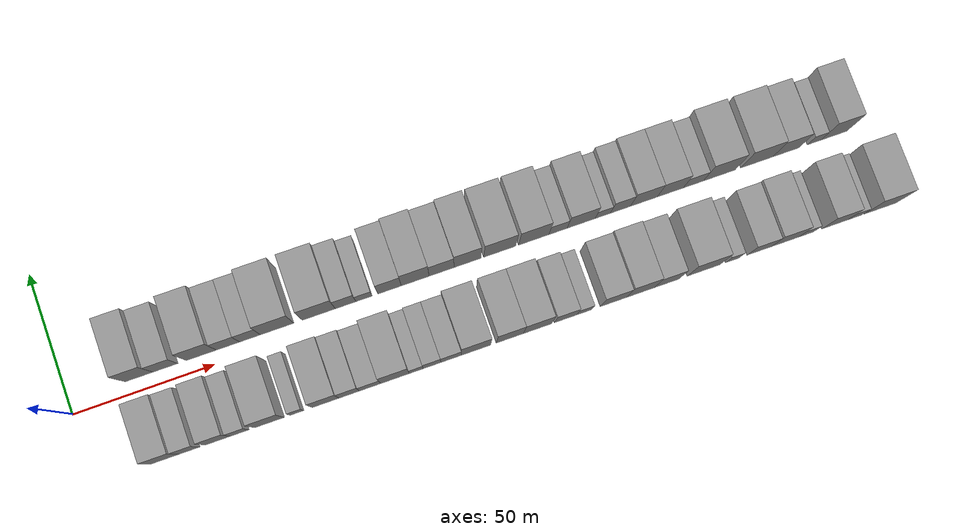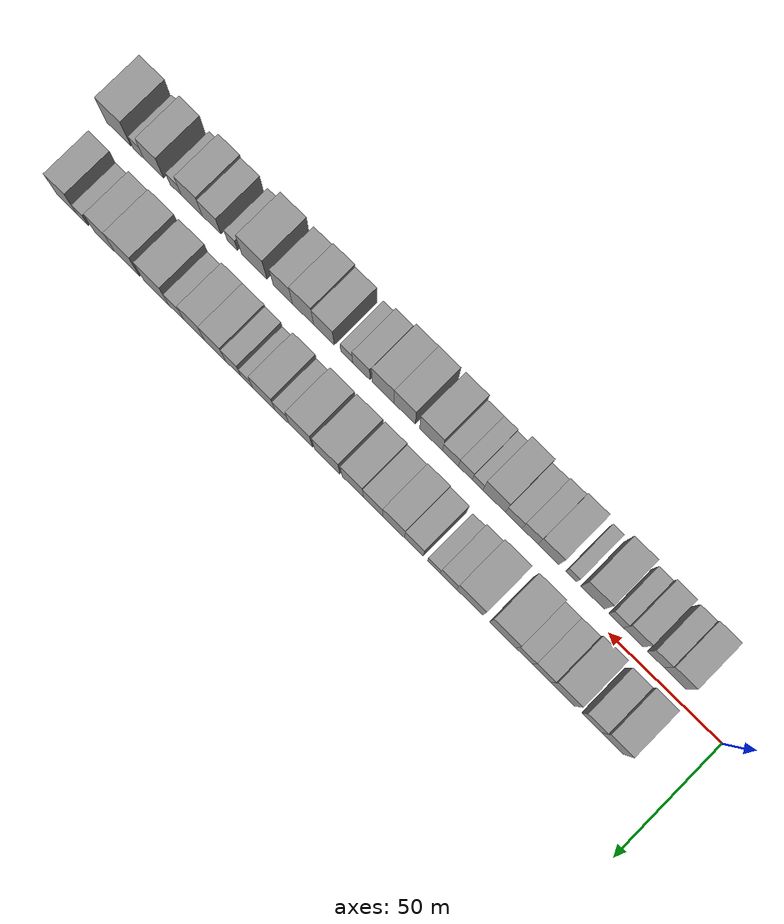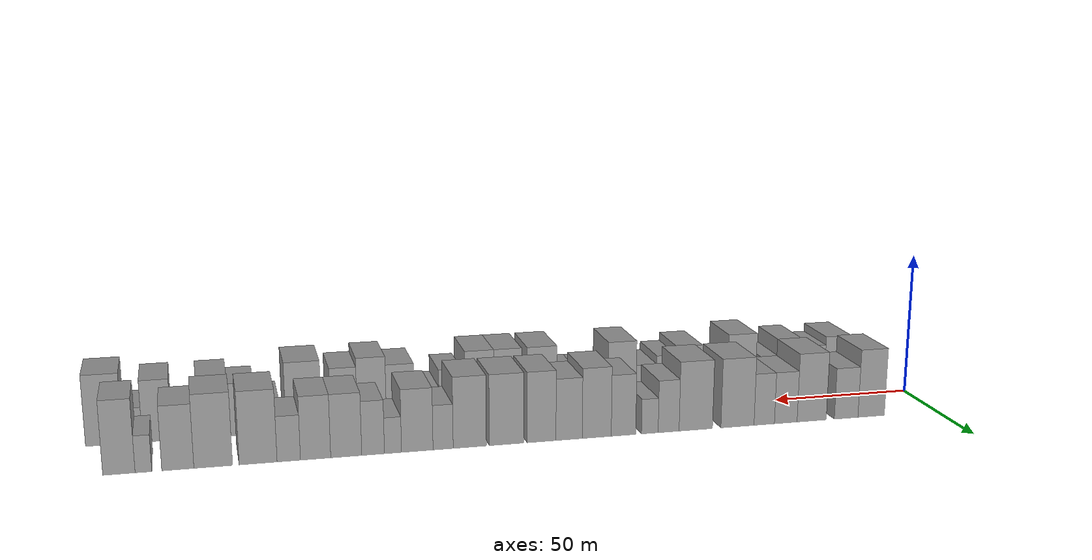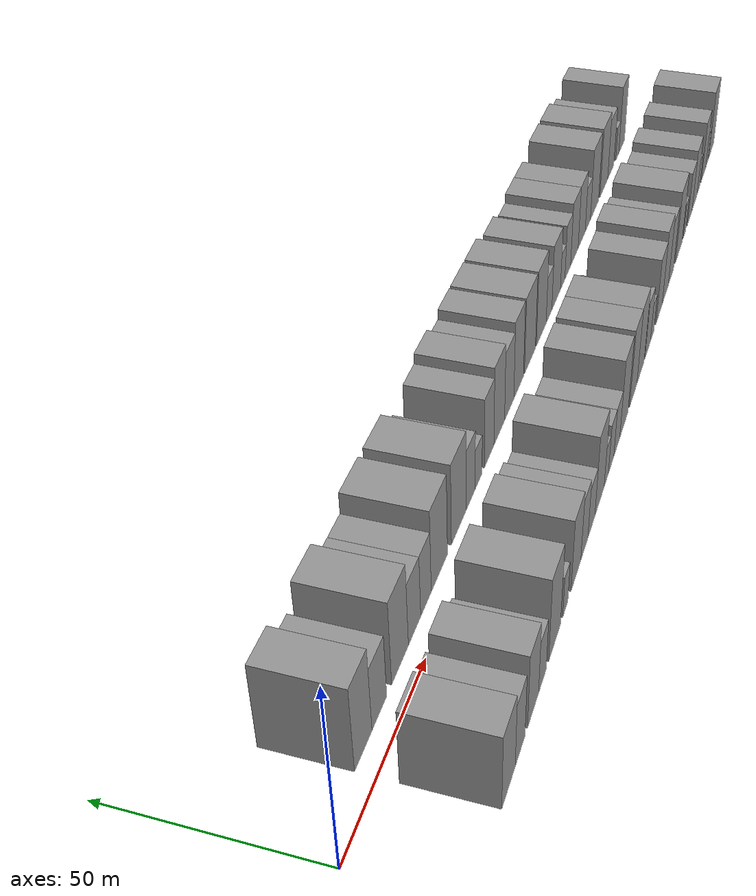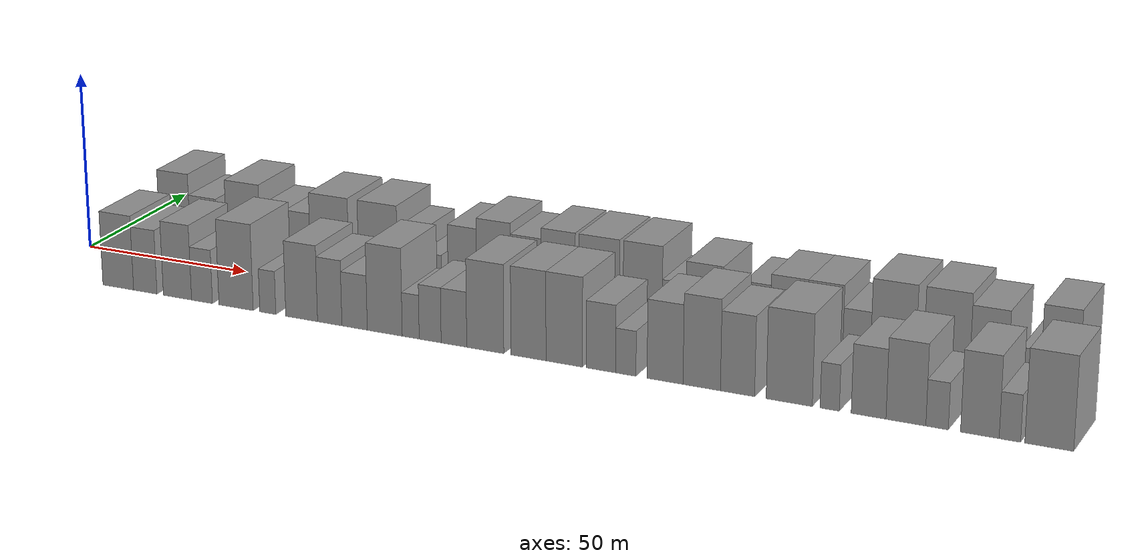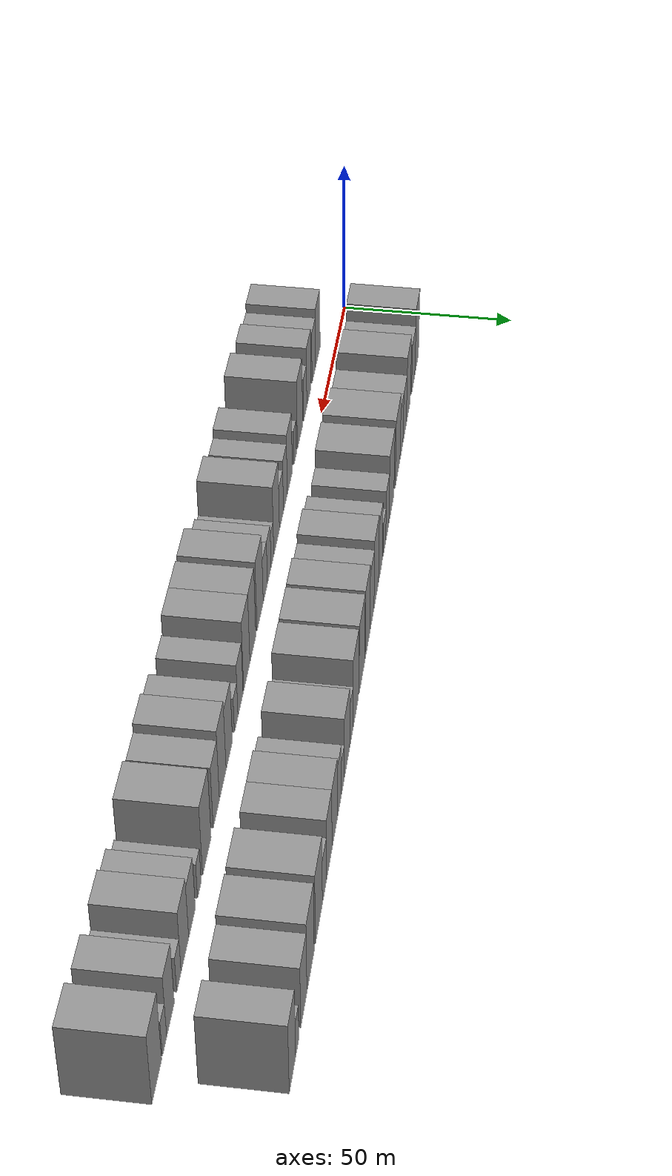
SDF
<sdf version="1.6">
 <world name="default">
  <scene>
   <sky><clouds><speed>12</speed></clouds></sky>
   <ambient>0.4 0.4 0.4 1</ambient>
   <background>0.7 0.7 0.7 1</background>
   <shadows>1</shadows>
  </scene>
  <gravity>0 0 -9.8066</gravity>
  <magnetic_field>6e-06 2.3e-05 -4.2e-05</magnetic_field>
  <physics default="0" name="default_physics" type="ode">
   <ode>
    <solver>
     <type>quick</type>
     <iters>10</iters>
     <sor>1.0</sor>
     <use_dynamic_moi_rescaling>0</use_dynamic_moi_rescaling>
    </solver>
    <constraints>
     <cfm>0</cfm>
     <erp>0.2</erp>
     <contact_max_correcting_vel>100</contact_max_correcting_vel>
     <contact_surface_layer>0.001</contact_surface_layer>
    </constraints>
   </ode>
   <max_step_size>0.004</max_step_size>
   <real_time_factor>1</real_time_factor>
   <real_time_update_rate>250</real_time_update_rate>
  </physics>
  <light name="sun" type="directional">
   <pose>0 0 10 0 0 0</pose>
   <diffuse>0.8 0.8 0.8 1</diffuse>
   <specular>0.2 0.2 0.2 1</specular>
   <attenuation>
    <range>1000</range>
    <constant>0.9</constant>
    <linear>0.01</linear>
    <quadratic>0.001</quadratic>
   </attenuation>
   <direction>-0.5 0.1 -0.9</direction>
  </light>
  <model name="building_1">
   <static>1</static>
   <pose>24.9213 14.5000 0 0.000000 0.000000 1.570796</pose>
   <link name="link">
    <pose>0 0 12.00 0 0 0</pose>
    <collision name="collision"><geometry><box><size>20.0000 9.8426 24.0000</size></box></geometry></collision>
    <visual name="visual">
     <cast_shadows>0</cast_shadows>
     <geometry><box><size>20.0000 9.8426 24.0000</size></box></geometry>
     <material>
      <script>
       <uri>model://grey_wall/materials/scripts</uri>
       <uri>model://grey_wall/materials/textures</uri>
       <name>vrc/grey_wall</name>
      </script>
     </material>
    </visual>
   </link>
  </model>
  <model name="building_2">
   <static>1</static>
   <pose>34.2108 14.5000 0 0.000000 0.000000 1.570796</pose>
   <link name="link">
    <pose>0 0 9.00 0 0 0</pose>
    <collision name="collision"><geometry><box><size>20.0000 8.7364 18.0000</size></box></geometry></collision>
    <visual name="visual">
     <cast_shadows>0</cast_shadows>
     <geometry><box><size>20.0000 8.7364 18.0000</size></box></geometry>
     <material>
      <script>
       <uri>model://grey_wall/materials/scripts</uri>
       <uri>model://grey_wall/materials/textures</uri>
       <name>vrc/grey_wall</name>
      </script>
     </material>
    </visual>
   </link>
  </model>
  <model name="building_3">
   <static>1</static>
   <pose>46.9164 14.5000 0 0.000000 0.000000 1.570796</pose>
   <link name="link">
    <pose>0 0 12.00 0 0 0</pose>
    <collision name="collision"><geometry><box><size>20.0000 10.6748 24.0000</size></box></geometry></collision>
    <visual name="visual">
     <cast_shadows>0</cast_shadows>
     <geometry><box><size>20.0000 10.6748 24.0000</size></box></geometry>
     <material>
      <script>
       <uri>model://grey_wall/materials/scripts</uri>
       <uri>model://grey_wall/materials/textures</uri>
       <name>vrc/grey_wall</name>
      </script>
     </material>
    </visual>
   </link>
  </model>
  <model name="building_4">
   <static>1</static>
   <pose>56.3717 14.5000 0 0.000000 0.000000 1.570796</pose>
   <link name="link">
    <pose>0 0 9.00 0 0 0</pose>
    <collision name="collision"><geometry><box><size>20.0000 8.2358 18.0000</size></box></geometry></collision>
    <visual name="visual">
     <cast_shadows>0</cast_shadows>
     <geometry><box><size>20.0000 8.2358 18.0000</size></box></geometry>
     <material>
      <script>
       <uri>model://grey_wall/materials/scripts</uri>
       <uri>model://grey_wall/materials/textures</uri>
       <name>vrc/grey_wall</name>
      </script>
     </material>
    </visual>
   </link>
  </model>
  <model name="building_5">
   <static>1</static>
   <pose>64.1708 14.5000 0 0.000000 0.000000 1.570796</pose>
   <link name="link">
    <pose>0 0 9.00 0 0 0</pose>
    <collision name="collision"><geometry><box><size>20.0000 7.3625 18.0000</size></box></geometry></collision>
    <visual name="visual">
     <cast_shadows>0</cast_shadows>
     <geometry><box><size>20.0000 7.3625 18.0000</size></box></geometry>
     <material>
      <script>
       <uri>model://grey_wall/materials/scripts</uri>
       <uri>model://grey_wall/materials/textures</uri>
       <name>vrc/grey_wall</name>
      </script>
     </material>
    </visual>
   </link>
  </model>
  <model name="building_6">
   <static>1</static>
   <pose>73.7804 14.5000 0 0.000000 0.000000 1.570796</pose>
   <link name="link">
    <pose>0 0 12.00 0 0 0</pose>
    <collision name="collision"><geometry><box><size>20.0000 11.8568 24.0000</size></box></geometry></collision>
    <visual name="visual">
     <cast_shadows>0</cast_shadows>
     <geometry><box><size>20.0000 11.8568 24.0000</size></box></geometry>
     <material>
      <script>
       <uri>model://grey_wall/materials/scripts</uri>
       <uri>model://grey_wall/materials/textures</uri>
       <name>vrc/grey_wall</name>
      </script>
     </material>
    </visual>
   </link>
  </model>
  <model name="building_7">
   <static>1</static>
   <pose>88.6104 14.5000 0 0.000000 0.000000 1.570796</pose>
   <link name="link">
    <pose>0 0 12.00 0 0 0</pose>
    <collision name="collision"><geometry><box><size>20.0000 11.8033 24.0000</size></box></geometry></collision>
    <visual name="visual">
     <cast_shadows>0</cast_shadows>
     <geometry><box><size>20.0000 11.8033 24.0000</size></box></geometry>
     <material>
      <script>
       <uri>model://grey_wall/materials/scripts</uri>
       <uri>model://grey_wall/materials/textures</uri>
       <name>vrc/grey_wall</name>
      </script>
     </material>
    </visual>
   </link>
  </model>
  <model name="building_8">
   <static>1</static>
   <pose>98.1789 14.5000 0 0.000000 0.000000 1.570796</pose>
   <link name="link">
    <pose>0 0 9.00 0 0 0</pose>
    <collision name="collision"><geometry><box><size>20.0000 7.3337 18.0000</size></box></geometry></collision>
    <visual name="visual">
     <cast_shadows>0</cast_shadows>
     <geometry><box><size>20.0000 7.3337 18.0000</size></box></geometry>
     <material>
      <script>
       <uri>model://grey_wall/materials/scripts</uri>
       <uri>model://grey_wall/materials/textures</uri>
       <name>vrc/grey_wall</name>
      </script>
     </material>
    </visual>
   </link>
  </model>
  <model name="building_9">
   <static>1</static>
   <pose>104.7551 14.5000 0 0.000000 0.000000 1.570796</pose>
   <link name="link">
    <pose>0 0 6.00 0 0 0</pose>
    <collision name="collision"><geometry><box><size>20.0000 5.8187 12.0000</size></box></geometry></collision>
    <visual name="visual">
     <cast_shadows>0</cast_shadows>
     <geometry><box><size>20.0000 5.8187 12.0000</size></box></geometry>
     <material>
      <script>
       <uri>model://grey_wall/materials/scripts</uri>
       <uri>model://grey_wall/materials/textures</uri>
       <name>vrc/grey_wall</name>
      </script>
     </material>
    </visual>
   </link>
  </model>
  <model name="building_10">
   <static>1</static>
   <pose>113.8860 14.5000 0 0.000000 0.000000 1.570796</pose>
   <link name="link">
    <pose>0 0 10.50 0 0 0</pose>
    <collision name="collision"><geometry><box><size>20.0000 8.4430 21.0000</size></box></geometry></collision>
    <visual name="visual">
     <cast_shadows>0</cast_shadows>
     <geometry><box><size>20.0000 8.4430 21.0000</size></box></geometry>
     <material>
      <script>
       <uri>model://grey_wall/materials/scripts</uri>
       <uri>model://grey_wall/materials/textures</uri>
       <name>vrc/grey_wall</name>
      </script>
     </material>
    </visual>
   </link>
  </model>
  <model name="building_11">
   <static>1</static>
   <pose>123.0725 14.5000 0 0.000000 0.000000 1.570796</pose>
   <link name="link">
    <pose>0 0 12.00 0 0 0</pose>
    <collision name="collision"><geometry><box><size>20.0000 9.9300 24.0000</size></box></geometry></collision>
    <visual name="visual">
     <cast_shadows>0</cast_shadows>
     <geometry><box><size>20.0000 9.9300 24.0000</size></box></geometry>
     <material>
      <script>
       <uri>model://grey_wall/materials/scripts</uri>
       <uri>model://grey_wall/materials/textures</uri>
       <name>vrc/grey_wall</name>
      </script>
     </material>
    </visual>
   </link>
  </model>
  <model name="building_12">
   <static>1</static>
   <pose>132.5097 14.5000 0 0.000000 0.000000 1.570796</pose>
   <link name="link">
    <pose>0 0 10.50 0 0 0</pose>
    <collision name="collision"><geometry><box><size>20.0000 8.9445 21.0000</size></box></geometry></collision>
    <visual name="visual">
     <cast_shadows>0</cast_shadows>
     <geometry><box><size>20.0000 8.9445 21.0000</size></box></geometry>
     <material>
      <script>
       <uri>model://grey_wall/materials/scripts</uri>
       <uri>model://grey_wall/materials/textures</uri>
       <name>vrc/grey_wall</name>
      </script>
     </material>
    </visual>
   </link>
  </model>
  <model name="building_13">
   <static>1</static>
   <pose>141.8466 14.5000 0 0.000000 0.000000 1.570796</pose>
   <link name="link">
    <pose>0 0 12.00 0 0 0</pose>
    <collision name="collision"><geometry><box><size>20.0000 9.7292 24.0000</size></box></geometry></collision>
    <visual name="visual">
     <cast_shadows>0</cast_shadows>
     <geometry><box><size>20.0000 9.7292 24.0000</size></box></geometry>
     <material>
      <script>
       <uri>model://grey_wall/materials/scripts</uri>
       <uri>model://grey_wall/materials/textures</uri>
       <name>vrc/grey_wall</name>
      </script>
     </material>
    </visual>
   </link>
  </model>
  <model name="building_14">
   <static>1</static>
   <pose>153.4998 14.5000 0 0.000000 0.000000 1.570796</pose>
   <link name="link">
    <pose>0 0 12.00 0 0 0</pose>
    <collision name="collision"><geometry><box><size>20.0000 11.5773 24.0000</size></box></geometry></collision>
    <visual name="visual">
     <cast_shadows>0</cast_shadows>
     <geometry><box><size>20.0000 11.5773 24.0000</size></box></geometry>
     <material>
      <script>
       <uri>model://grey_wall/materials/scripts</uri>
       <uri>model://grey_wall/materials/textures</uri>
       <name>vrc/grey_wall</name>
      </script>
     </material>
    </visual>
   </link>
  </model>
  <model name="building_15">
   <static>1</static>
   <pose>165.7595 14.5000 0 0.000000 0.000000 1.570796</pose>
   <link name="link">
    <pose>0 0 12.00 0 0 0</pose>
    <collision name="collision"><geometry><box><size>20.0000 10.9421 24.0000</size></box></geometry></collision>
    <visual name="visual">
     <cast_shadows>0</cast_shadows>
     <geometry><box><size>20.0000 10.9421 24.0000</size></box></geometry>
     <material>
      <script>
       <uri>model://grey_wall/materials/scripts</uri>
       <uri>model://grey_wall/materials/textures</uri>
       <name>vrc/grey_wall</name>
      </script>
     </material>
    </visual>
   </link>
  </model>
  <model name="building_16">
   <static>1</static>
   <pose>174.5269 14.5000 0 0.000000 0.000000 1.570796</pose>
   <link name="link">
    <pose>0 0 7.50 0 0 0</pose>
    <collision name="collision"><geometry><box><size>20.0000 6.5929 15.0000</size></box></geometry></collision>
    <visual name="visual">
     <cast_shadows>0</cast_shadows>
     <geometry><box><size>20.0000 6.5929 15.0000</size></box></geometry>
     <material>
      <script>
       <uri>model://grey_wall/materials/scripts</uri>
       <uri>model://grey_wall/materials/textures</uri>
       <name>vrc/grey_wall</name>
      </script>
     </material>
    </visual>
   </link>
  </model>
  <model name="building_17">
   <static>1</static>
   <pose>182.9352 14.5000 0 0.000000 0.000000 1.570796</pose>
   <link name="link">
    <pose>0 0 10.50 0 0 0</pose>
    <collision name="collision"><geometry><box><size>20.0000 10.2236 21.0000</size></box></geometry></collision>
    <visual name="visual">
     <cast_shadows>0</cast_shadows>
     <geometry><box><size>20.0000 10.2236 21.0000</size></box></geometry>
     <material>
      <script>
       <uri>model://grey_wall/materials/scripts</uri>
       <uri>model://grey_wall/materials/textures</uri>
       <name>vrc/grey_wall</name>
      </script>
     </material>
    </visual>
   </link>
  </model>
  <model name="building_18">
   <static>1</static>
   <pose>190.7965 14.5000 0 0.000000 0.000000 1.570796</pose>
   <link name="link">
    <pose>0 0 6.00 0 0 0</pose>
    <collision name="collision"><geometry><box><size>20.0000 5.4990 12.0000</size></box></geometry></collision>
    <visual name="visual">
     <cast_shadows>0</cast_shadows>
     <geometry><box><size>20.0000 5.4990 12.0000</size></box></geometry>
     <material>
      <script>
       <uri>model://grey_wall/materials/scripts</uri>
       <uri>model://grey_wall/materials/textures</uri>
       <name>vrc/grey_wall</name>
      </script>
     </material>
    </visual>
   </link>
  </model>
  <model name="building_19">
   <static>1</static>
   <pose>197.1813 14.5000 0 0.000000 0.000000 1.570796</pose>
   <link name="link">
    <pose>0 0 9.00 0 0 0</pose>
    <collision name="collision"><geometry><box><size>20.0000 7.2705 18.0000</size></box></geometry></collision>
    <visual name="visual">
     <cast_shadows>0</cast_shadows>
     <geometry><box><size>20.0000 7.2705 18.0000</size></box></geometry>
     <material>
      <script>
       <uri>model://grey_wall/materials/scripts</uri>
       <uri>model://grey_wall/materials/textures</uri>
       <name>vrc/grey_wall</name>
      </script>
     </material>
    </visual>
   </link>
  </model>
  <model name="building_20">
   <static>1</static>
   <pose>205.7547 14.5000 0 0.000000 0.000000 1.570796</pose>
   <link name="link">
    <pose>0 0 10.50 0 0 0</pose>
    <collision name="collision"><geometry><box><size>20.0000 9.8763 21.0000</size></box></geometry></collision>
    <visual name="visual">
     <cast_shadows>0</cast_shadows>
     <geometry><box><size>20.0000 9.8763 21.0000</size></box></geometry>
     <material>
      <script>
       <uri>model://grey_wall/materials/scripts</uri>
       <uri>model://grey_wall/materials/textures</uri>
       <name>vrc/grey_wall</name>
      </script>
     </material>
    </visual>
   </link>
  </model>
  <model name="building_21">
   <static>1</static>
   <pose>215.4536 14.5000 0 0.000000 0.000000 1.570796</pose>
   <link name="link">
    <pose>0 0 10.50 0 0 0</pose>
    <collision name="collision"><geometry><box><size>20.0000 9.5215 21.0000</size></box></geometry></collision>
    <visual name="visual">
     <cast_shadows>0</cast_shadows>
     <geometry><box><size>20.0000 9.5215 21.0000</size></box></geometry>
     <material>
      <script>
       <uri>model://grey_wall/materials/scripts</uri>
       <uri>model://grey_wall/materials/textures</uri>
       <name>vrc/grey_wall</name>
      </script>
     </material>
    </visual>
   </link>
  </model>
  <model name="building_22">
   <static>1</static>
   <pose>223.8726 14.5000 0 0.000000 0.000000 1.570796</pose>
   <link name="link">
    <pose>0 0 7.50 0 0 0</pose>
    <collision name="collision"><geometry><box><size>20.0000 7.3166 15.0000</size></box></geometry></collision>
    <visual name="visual">
     <cast_shadows>0</cast_shadows>
     <geometry><box><size>20.0000 7.3166 15.0000</size></box></geometry>
     <material>
      <script>
       <uri>model://grey_wall/materials/scripts</uri>
       <uri>model://grey_wall/materials/textures</uri>
       <name>vrc/grey_wall</name>
      </script>
     </material>
    </visual>
   </link>
  </model>
  <model name="building_23">
   <static>1</static>
   <pose>233.4138 14.5000 0 0.000000 0.000000 1.570796</pose>
   <link name="link">
    <pose>0 0 12.00 0 0 0</pose>
    <collision name="collision"><geometry><box><size>20.0000 11.7658 24.0000</size></box></geometry></collision>
    <visual name="visual">
     <cast_shadows>0</cast_shadows>
     <geometry><box><size>20.0000 11.7658 24.0000</size></box></geometry>
     <material>
      <script>
       <uri>model://grey_wall/materials/scripts</uri>
       <uri>model://grey_wall/materials/textures</uri>
       <name>vrc/grey_wall</name>
      </script>
     </material>
    </visual>
   </link>
  </model>
  <model name="building_24">
   <static>1</static>
   <pose>247.2125 14.5000 0 0.000000 0.000000 1.570796</pose>
   <link name="link">
    <pose>0 0 12.00 0 0 0</pose>
    <collision name="collision"><geometry><box><size>20.0000 11.8316 24.0000</size></box></geometry></collision>
    <visual name="visual">
     <cast_shadows>0</cast_shadows>
     <geometry><box><size>20.0000 11.8316 24.0000</size></box></geometry>
     <material>
      <script>
       <uri>model://grey_wall/materials/scripts</uri>
       <uri>model://grey_wall/materials/textures</uri>
       <name>vrc/grey_wall</name>
      </script>
     </material>
    </visual>
   </link>
  </model>
  <model name="building_25">
   <static>1</static>
   <pose>257.9860 14.5000 0 0.000000 0.000000 1.570796</pose>
   <link name="link">
    <pose>0 0 10.50 0 0 0</pose>
    <collision name="collision"><geometry><box><size>20.0000 9.7156 21.0000</size></box></geometry></collision>
    <visual name="visual">
     <cast_shadows>0</cast_shadows>
     <geometry><box><size>20.0000 9.7156 21.0000</size></box></geometry>
     <material>
      <script>
       <uri>model://grey_wall/materials/scripts</uri>
       <uri>model://grey_wall/materials/textures</uri>
       <name>vrc/grey_wall</name>
      </script>
     </material>
    </visual>
   </link>
  </model>
  <model name="building_26">
   <static>1</static>
   <pose>268.3505 14.5000 0 0.000000 0.000000 1.570796</pose>
   <link name="link">
    <pose>0 0 6.00 0 0 0</pose>
    <collision name="collision"><geometry><box><size>20.0000 5.0134 12.0000</size></box></geometry></collision>
    <visual name="visual">
     <cast_shadows>0</cast_shadows>
     <geometry><box><size>20.0000 5.0134 12.0000</size></box></geometry>
     <material>
      <script>
       <uri>model://grey_wall/materials/scripts</uri>
       <uri>model://grey_wall/materials/textures</uri>
       <name>vrc/grey_wall</name>
      </script>
     </material>
    </visual>
   </link>
  </model>
  <model name="building_27">
   <static>1</static>
   <pose>275.6742 14.5000 0 0.000000 0.000000 1.570796</pose>
   <link name="link">
    <pose>0 0 12.00 0 0 0</pose>
    <collision name="collision"><geometry><box><size>20.0000 9.6340 24.0000</size></box></geometry></collision>
    <visual name="visual">
     <cast_shadows>0</cast_shadows>
     <geometry><box><size>20.0000 9.6340 24.0000</size></box></geometry>
     <material>
      <script>
       <uri>model://grey_wall/materials/scripts</uri>
       <uri>model://grey_wall/materials/textures</uri>
       <name>vrc/grey_wall</name>
      </script>
     </material>
    </visual>
   </link>
  </model>
  <model name="building_28">
   <static>1</static>
   <pose>24.8531 -14.5000 0 0.000000 0.000000 1.570796</pose>
   <link name="link">
    <pose>0 0 10.50 0 0 0</pose>
    <collision name="collision"><geometry><box><size>20.0000 9.7062 21.0000</size></box></geometry></collision>
    <visual name="visual">
     <cast_shadows>0</cast_shadows>
     <geometry><box><size>20.0000 9.7062 21.0000</size></box></geometry>
     <material>
      <script>
       <uri>model://grey_wall/materials/scripts</uri>
       <uri>model://grey_wall/materials/textures</uri>
       <name>vrc/grey_wall</name>
      </script>
     </material>
    </visual>
   </link>
  </model>
  <model name="building_29">
   <static>1</static>
   <pose>33.3818 -14.5000 0 0.000000 0.000000 1.570796</pose>
   <link name="link">
    <pose>0 0 9.00 0 0 0</pose>
    <collision name="collision"><geometry><box><size>20.0000 7.3511 18.0000</size></box></geometry></collision>
    <visual name="visual">
     <cast_shadows>0</cast_shadows>
     <geometry><box><size>20.0000 7.3511 18.0000</size></box></geometry>
     <material>
      <script>
       <uri>model://grey_wall/materials/scripts</uri>
       <uri>model://grey_wall/materials/textures</uri>
       <name>vrc/grey_wall</name>
      </script>
     </material>
    </visual>
   </link>
  </model>
  <model name="building_30">
   <static>1</static>
   <pose>43.4409 -14.5000 0 0.000000 0.000000 1.570796</pose>
   <link name="link">
    <pose>0 0 10.50 0 0 0</pose>
    <collision name="collision"><geometry><box><size>20.0000 8.7672 21.0000</size></box></geometry></collision>
    <visual name="visual">
     <cast_shadows>0</cast_shadows>
     <geometry><box><size>20.0000 8.7672 21.0000</size></box></geometry>
     <material>
      <script>
       <uri>model://grey_wall/materials/scripts</uri>
       <uri>model://grey_wall/materials/textures</uri>
       <name>vrc/grey_wall</name>
      </script>
     </material>
    </visual>
   </link>
  </model>
  <model name="building_31">
   <static>1</static>
   <pose>51.0541 -14.5000 0 0.000000 0.000000 1.570796</pose>
   <link name="link">
    <pose>0 0 7.50 0 0 0</pose>
    <collision name="collision"><geometry><box><size>20.0000 6.4592 15.0000</size></box></geometry></collision>
    <visual name="visual">
     <cast_shadows>0</cast_shadows>
     <geometry><box><size>20.0000 6.4592 15.0000</size></box></geometry>
     <material>
      <script>
       <uri>model://grey_wall/materials/scripts</uri>
       <uri>model://grey_wall/materials/textures</uri>
       <name>vrc/grey_wall</name>
      </script>
     </material>
    </visual>
   </link>
  </model>
  <model name="building_32">
   <static>1</static>
   <pose>61.5171 -14.5000 0 0.000000 0.000000 1.570796</pose>
   <link name="link">
    <pose>0 0 12.00 0 0 0</pose>
    <collision name="collision"><geometry><box><size>20.0000 10.4669 24.0000</size></box></geometry></collision>
    <visual name="visual">
     <cast_shadows>0</cast_shadows>
     <geometry><box><size>20.0000 10.4669 24.0000</size></box></geometry>
     <material>
      <script>
       <uri>model://grey_wall/materials/scripts</uri>
       <uri>model://grey_wall/materials/textures</uri>
       <name>vrc/grey_wall</name>
      </script>
     </material>
    </visual>
   </link>
  </model>
  <model name="building_33">
   <static>1</static>
   <pose>71.1717 -14.5000 0 0.000000 0.000000 1.570796</pose>
   <link name="link">
    <pose>0 0 6.00 0 0 0</pose>
    <collision name="collision"><geometry><box><size>20.0000 4.8421 12.0000</size></box></geometry></collision>
    <visual name="visual">
     <cast_shadows>0</cast_shadows>
     <geometry><box><size>20.0000 4.8421 12.0000</size></box></geometry>
     <material>
      <script>
       <uri>model://grey_wall/materials/scripts</uri>
       <uri>model://grey_wall/materials/textures</uri>
       <name>vrc/grey_wall</name>
      </script>
     </material>
    </visual>
   </link>
  </model>
  <model name="building_34">
   <static>1</static>
   <pose>81.3410 -14.5000 0 0.000000 0.000000 1.570796</pose>
   <link name="link">
    <pose>0 0 10.50 0 0 0</pose>
    <collision name="collision"><geometry><box><size>20.0000 9.4965 21.0000</size></box></geometry></collision>
    <visual name="visual">
     <cast_shadows>0</cast_shadows>
     <geometry><box><size>20.0000 9.4965 21.0000</size></box></geometry>
     <material>
      <script>
       <uri>model://grey_wall/materials/scripts</uri>
       <uri>model://grey_wall/materials/textures</uri>
       <name>vrc/grey_wall</name>
      </script>
     </material>
    </visual>
   </link>
  </model>
  <model name="building_35">
   <static>1</static>
   <pose>89.7003 -14.5000 0 0.000000 0.000000 1.570796</pose>
   <link name="link">
    <pose>0 0 9.00 0 0 0</pose>
    <collision name="collision"><geometry><box><size>20.0000 7.2221 18.0000</size></box></geometry></collision>
    <visual name="visual">
     <cast_shadows>0</cast_shadows>
     <geometry><box><size>20.0000 7.2221 18.0000</size></box></geometry>
     <material>
      <script>
       <uri>model://grey_wall/materials/scripts</uri>
       <uri>model://grey_wall/materials/textures</uri>
       <name>vrc/grey_wall</name>
      </script>
     </material>
    </visual>
   </link>
  </model>
  <model name="building_36">
   <static>1</static>
   <pose>97.0466 -14.5000 0 0.000000 0.000000 1.570796</pose>
   <link name="link">
    <pose>0 0 7.50 0 0 0</pose>
    <collision name="collision"><geometry><box><size>20.0000 7.4705 15.0000</size></box></geometry></collision>
    <visual name="visual">
     <cast_shadows>0</cast_shadows>
     <geometry><box><size>20.0000 7.4705 15.0000</size></box></geometry>
     <material>
      <script>
       <uri>model://grey_wall/materials/scripts</uri>
       <uri>model://grey_wall/materials/textures</uri>
       <name>vrc/grey_wall</name>
      </script>
     </material>
    </visual>
   </link>
  </model>
  <model name="building_37">
   <static>1</static>
   <pose>105.8740 -14.5000 0 0.000000 0.000000 1.570796</pose>
   <link name="link">
    <pose>0 0 12.00 0 0 0</pose>
    <collision name="collision"><geometry><box><size>20.0000 10.1844 24.0000</size></box></geometry></collision>
    <visual name="visual">
     <cast_shadows>0</cast_shadows>
     <geometry><box><size>20.0000 10.1844 24.0000</size></box></geometry>
     <material>
      <script>
       <uri>model://grey_wall/materials/scripts</uri>
       <uri>model://grey_wall/materials/textures</uri>
       <name>vrc/grey_wall</name>
      </script>
     </material>
    </visual>
   </link>
  </model>
  <model name="building_38">
   <static>1</static>
   <pose>113.4141 -14.5000 0 0.000000 0.000000 1.570796</pose>
   <link name="link">
    <pose>0 0 6.00 0 0 0</pose>
    <collision name="collision"><geometry><box><size>20.0000 4.8959 12.0000</size></box></geometry></collision>
    <visual name="visual">
     <cast_shadows>0</cast_shadows>
     <geometry><box><size>20.0000 4.8959 12.0000</size></box></geometry>
     <material>
      <script>
       <uri>model://grey_wall/materials/scripts</uri>
       <uri>model://grey_wall/materials/textures</uri>
       <name>vrc/grey_wall</name>
      </script>
     </material>
    </visual>
   </link>
  </model>
  <model name="building_39">
   <static>1</static>
   <pose>119.0171 -14.5000 0 0.000000 0.000000 1.570796</pose>
   <link name="link">
    <pose>0 0 7.50 0 0 0</pose>
    <collision name="collision"><geometry><box><size>20.0000 6.3101 15.0000</size></box></geometry></collision>
    <visual name="visual">
     <cast_shadows>0</cast_shadows>
     <geometry><box><size>20.0000 6.3101 15.0000</size></box></geometry>
     <material>
      <script>
       <uri>model://grey_wall/materials/scripts</uri>
       <uri>model://grey_wall/materials/textures</uri>
       <name>vrc/grey_wall</name>
      </script>
     </material>
    </visual>
   </link>
  </model>
  <model name="building_40">
   <static>1</static>
   <pose>125.8187 -14.5000 0 0.000000 0.000000 1.570796</pose>
   <link name="link">
    <pose>0 0 7.50 0 0 0</pose>
    <collision name="collision"><geometry><box><size>20.0000 7.2931 15.0000</size></box></geometry></collision>
    <visual name="visual">
     <cast_shadows>0</cast_shadows>
     <geometry><box><size>20.0000 7.2931 15.0000</size></box></geometry>
     <material>
      <script>
       <uri>model://grey_wall/materials/scripts</uri>
       <uri>model://grey_wall/materials/textures</uri>
       <name>vrc/grey_wall</name>
      </script>
     </material>
    </visual>
   </link>
  </model>
  <model name="building_41">
   <static>1</static>
   <pose>134.7060 -14.5000 0 0.000000 0.000000 1.570796</pose>
   <link name="link">
    <pose>0 0 12.00 0 0 0</pose>
    <collision name="collision"><geometry><box><size>20.0000 10.4814 24.0000</size></box></geometry></collision>
    <visual name="visual">
     <cast_shadows>0</cast_shadows>
     <geometry><box><size>20.0000 10.4814 24.0000</size></box></geometry>
     <material>
      <script>
       <uri>model://grey_wall/materials/scripts</uri>
       <uri>model://grey_wall/materials/textures</uri>
       <name>vrc/grey_wall</name>
      </script>
     </material>
    </visual>
   </link>
  </model>
  <model name="building_42">
   <static>1</static>
   <pose>146.8254 -14.5000 0 0.000000 0.000000 1.570796</pose>
   <link name="link">
    <pose>0 0 12.00 0 0 0</pose>
    <collision name="collision"><geometry><box><size>20.0000 9.7575 24.0000</size></box></geometry></collision>
    <visual name="visual">
     <cast_shadows>0</cast_shadows>
     <geometry><box><size>20.0000 9.7575 24.0000</size></box></geometry>
     <material>
      <script>
       <uri>model://grey_wall/materials/scripts</uri>
       <uri>model://grey_wall/materials/textures</uri>
       <name>vrc/grey_wall</name>
      </script>
     </material>
    </visual>
   </link>
  </model>
  <model name="building_43">
   <static>1</static>
   <pose>156.7354 -14.5000 0 0.000000 0.000000 1.570796</pose>
   <link name="link">
    <pose>0 0 12.00 0 0 0</pose>
    <collision name="collision"><geometry><box><size>20.0000 10.0626 24.0000</size></box></geometry></collision>
    <visual name="visual">
     <cast_shadows>0</cast_shadows>
     <geometry><box><size>20.0000 10.0626 24.0000</size></box></geometry>
     <material>
      <script>
       <uri>model://grey_wall/materials/scripts</uri>
       <uri>model://grey_wall/materials/textures</uri>
       <name>vrc/grey_wall</name>
      </script>
     </material>
    </visual>
   </link>
  </model>
  <model name="building_44">
   <static>1</static>
   <pose>166.7899 -14.5000 0 0.000000 0.000000 1.570796</pose>
   <link name="link">
    <pose>0 0 9.00 0 0 0</pose>
    <collision name="collision"><geometry><box><size>20.0000 8.0464 18.0000</size></box></geometry></collision>
    <visual name="visual">
     <cast_shadows>0</cast_shadows>
     <geometry><box><size>20.0000 8.0464 18.0000</size></box></geometry>
     <material>
      <script>
       <uri>model://grey_wall/materials/scripts</uri>
       <uri>model://grey_wall/materials/textures</uri>
       <name>vrc/grey_wall</name>
      </script>
     </material>
    </visual>
   </link>
  </model>
  <model name="building_45">
   <static>1</static>
   <pose>173.5563 -14.5000 0 0.000000 0.000000 1.570796</pose>
   <link name="link">
    <pose>0 0 6.00 0 0 0</pose>
    <collision name="collision"><geometry><box><size>20.0000 5.4864 12.0000</size></box></geometry></collision>
    <visual name="visual">
     <cast_shadows>0</cast_shadows>
     <geometry><box><size>20.0000 5.4864 12.0000</size></box></geometry>
     <material>
      <script>
       <uri>model://grey_wall/materials/scripts</uri>
       <uri>model://grey_wall/materials/textures</uri>
       <name>vrc/grey_wall</name>
      </script>
     </material>
    </visual>
   </link>
  </model>
  <model name="building_46">
   <static>1</static>
   <pose>184.1044 -14.5000 0 0.000000 0.000000 1.570796</pose>
   <link name="link">
    <pose>0 0 10.50 0 0 0</pose>
    <collision name="collision"><geometry><box><size>20.0000 9.6098 21.0000</size></box></geometry></collision>
    <visual name="visual">
     <cast_shadows>0</cast_shadows>
     <geometry><box><size>20.0000 9.6098 21.0000</size></box></geometry>
     <material>
      <script>
       <uri>model://grey_wall/materials/scripts</uri>
       <uri>model://grey_wall/materials/textures</uri>
       <name>vrc/grey_wall</name>
      </script>
     </material>
    </visual>
   </link>
  </model>
  <model name="building_47">
   <static>1</static>
   <pose>193.8530 -14.5000 0 0.000000 0.000000 1.570796</pose>
   <link name="link">
    <pose>0 0 12.00 0 0 0</pose>
    <collision name="collision"><geometry><box><size>20.0000 9.8873 24.0000</size></box></geometry></collision>
    <visual name="visual">
     <cast_shadows>0</cast_shadows>
     <geometry><box><size>20.0000 9.8873 24.0000</size></box></geometry>
     <material>
      <script>
       <uri>model://grey_wall/materials/scripts</uri>
       <uri>model://grey_wall/materials/textures</uri>
       <name>vrc/grey_wall</name>
      </script>
     </material>
    </visual>
   </link>
  </model>
  <model name="building_48">
   <static>1</static>
   <pose>203.2774 -14.5000 0 0.000000 0.000000 1.570796</pose>
   <link name="link">
    <pose>0 0 10.50 0 0 0</pose>
    <collision name="collision"><geometry><box><size>20.0000 8.9614 21.0000</size></box></geometry></collision>
    <visual name="visual">
     <cast_shadows>0</cast_shadows>
     <geometry><box><size>20.0000 8.9614 21.0000</size></box></geometry>
     <material>
      <script>
       <uri>model://grey_wall/materials/scripts</uri>
       <uri>model://grey_wall/materials/textures</uri>
       <name>vrc/grey_wall</name>
      </script>
     </material>
    </visual>
   </link>
  </model>
  <model name="building_49">
   <static>1</static>
   <pose>216.7071 -14.5000 0 0.000000 0.000000 1.570796</pose>
   <link name="link">
    <pose>0 0 12.00 0 0 0</pose>
    <collision name="collision"><geometry><box><size>20.0000 11.8980 24.0000</size></box></geometry></collision>
    <visual name="visual">
     <cast_shadows>0</cast_shadows>
     <geometry><box><size>20.0000 11.8980 24.0000</size></box></geometry>
     <material>
      <script>
       <uri>model://grey_wall/materials/scripts</uri>
       <uri>model://grey_wall/materials/textures</uri>
       <name>vrc/grey_wall</name>
      </script>
     </material>
    </visual>
   </link>
  </model>
  <model name="building_50">
   <static>1</static>
   <pose>227.1033 -14.5000 0 0.000000 0.000000 1.570796</pose>
   <link name="link">
    <pose>0 0 6.00 0 0 0</pose>
    <collision name="collision"><geometry><box><size>20.0000 4.8944 12.0000</size></box></geometry></collision>
    <visual name="visual">
     <cast_shadows>0</cast_shadows>
     <geometry><box><size>20.0000 4.8944 12.0000</size></box></geometry>
     <material>
      <script>
       <uri>model://grey_wall/materials/scripts</uri>
       <uri>model://grey_wall/materials/textures</uri>
       <name>vrc/grey_wall</name>
      </script>
     </material>
    </visual>
   </link>
  </model>
  <model name="building_51">
   <static>1</static>
   <pose>236.9321 -14.5000 0 0.000000 0.000000 1.570796</pose>
   <link name="link">
    <pose>0 0 9.00 0 0 0</pose>
    <collision name="collision"><geometry><box><size>20.0000 8.7633 18.0000</size></box></geometry></collision>
    <visual name="visual">
     <cast_shadows>0</cast_shadows>
     <geometry><box><size>20.0000 8.7633 18.0000</size></box></geometry>
     <material>
      <script>
       <uri>model://grey_wall/materials/scripts</uri>
       <uri>model://grey_wall/materials/textures</uri>
       <name>vrc/grey_wall</name>
      </script>
     </material>
    </visual>
   </link>
  </model>
  <model name="building_52">
   <static>1</static>
   <pose>246.2803 -14.5000 0 0.000000 0.000000 1.570796</pose>
   <link name="link">
    <pose>0 0 10.50 0 0 0</pose>
    <collision name="collision"><geometry><box><size>20.0000 9.9333 21.0000</size></box></geometry></collision>
    <visual name="visual">
     <cast_shadows>0</cast_shadows>
     <geometry><box><size>20.0000 9.9333 21.0000</size></box></geometry>
     <material>
      <script>
       <uri>model://grey_wall/materials/scripts</uri>
       <uri>model://grey_wall/materials/textures</uri>
       <name>vrc/grey_wall</name>
      </script>
     </material>
    </visual>
   </link>
  </model>
  <model name="building_53">
   <static>1</static>
   <pose>254.0213 -14.5000 0 0.000000 0.000000 1.570796</pose>
   <link name="link">
    <pose>0 0 6.00 0 0 0</pose>
    <collision name="collision"><geometry><box><size>20.0000 5.5487 12.0000</size></box></geometry></collision>
    <visual name="visual">
     <cast_shadows>0</cast_shadows>
     <geometry><box><size>20.0000 5.5487 12.0000</size></box></geometry>
     <material>
      <script>
       <uri>model://grey_wall/materials/scripts</uri>
       <uri>model://grey_wall/materials/textures</uri>
       <name>vrc/grey_wall</name>
      </script>
     </material>
    </visual>
   </link>
  </model>
  <model name="building_54">
   <static>1</static>
   <pose>264.5015 -14.5000 0 0.000000 0.000000 1.570796</pose>
   <link name="link">
    <pose>0 0 10.50 0 0 0</pose>
    <collision name="collision"><geometry><box><size>20.0000 9.4117 21.0000</size></box></geometry></collision>
    <visual name="visual">
     <cast_shadows>0</cast_shadows>
     <geometry><box><size>20.0000 9.4117 21.0000</size></box></geometry>
     <material>
      <script>
       <uri>model://grey_wall/materials/scripts</uri>
       <uri>model://grey_wall/materials/textures</uri>
       <name>vrc/grey_wall</name>
      </script>
     </material>
    </visual>
   </link>
  </model>
  <model name="building_55">
   <static>1</static>
   <pose>271.8073 -14.5000 0 0.000000 0.000000 1.570796</pose>
   <link name="link">
    <pose>0 0 6.00 0 0 0</pose>
    <collision name="collision"><geometry><box><size>20.0000 5.2000 12.0000</size></box></geometry></collision>
    <visual name="visual">
     <cast_shadows>0</cast_shadows>
     <geometry><box><size>20.0000 5.2000 12.0000</size></box></geometry>
     <material>
      <script>
       <uri>model://grey_wall/materials/scripts</uri>
       <uri>model://grey_wall/materials/textures</uri>
       <name>vrc/grey_wall</name>
      </script>
     </material>
    </visual>
   </link>
  </model>
  <model name="building_56">
   <static>1</static>
   <pose>281.2552 -14.5000 0 0.000000 0.000000 1.570796</pose>
   <link name="link">
    <pose>0 0 12.00 0 0 0</pose>
    <collision name="collision"><geometry><box><size>20.0000 11.6956 24.0000</size></box></geometry></collision>
    <visual name="visual">
     <cast_shadows>0</cast_shadows>
     <geometry><box><size>20.0000 11.6956 24.0000</size></box></geometry>
     <material>
      <script>
       <uri>model://grey_wall/materials/scripts</uri>
       <uri>model://grey_wall/materials/textures</uri>
       <name>vrc/grey_wall</name>
      </script>
     </material>
    </visual>
   </link>
  </model>
 </world>
</sdf>
